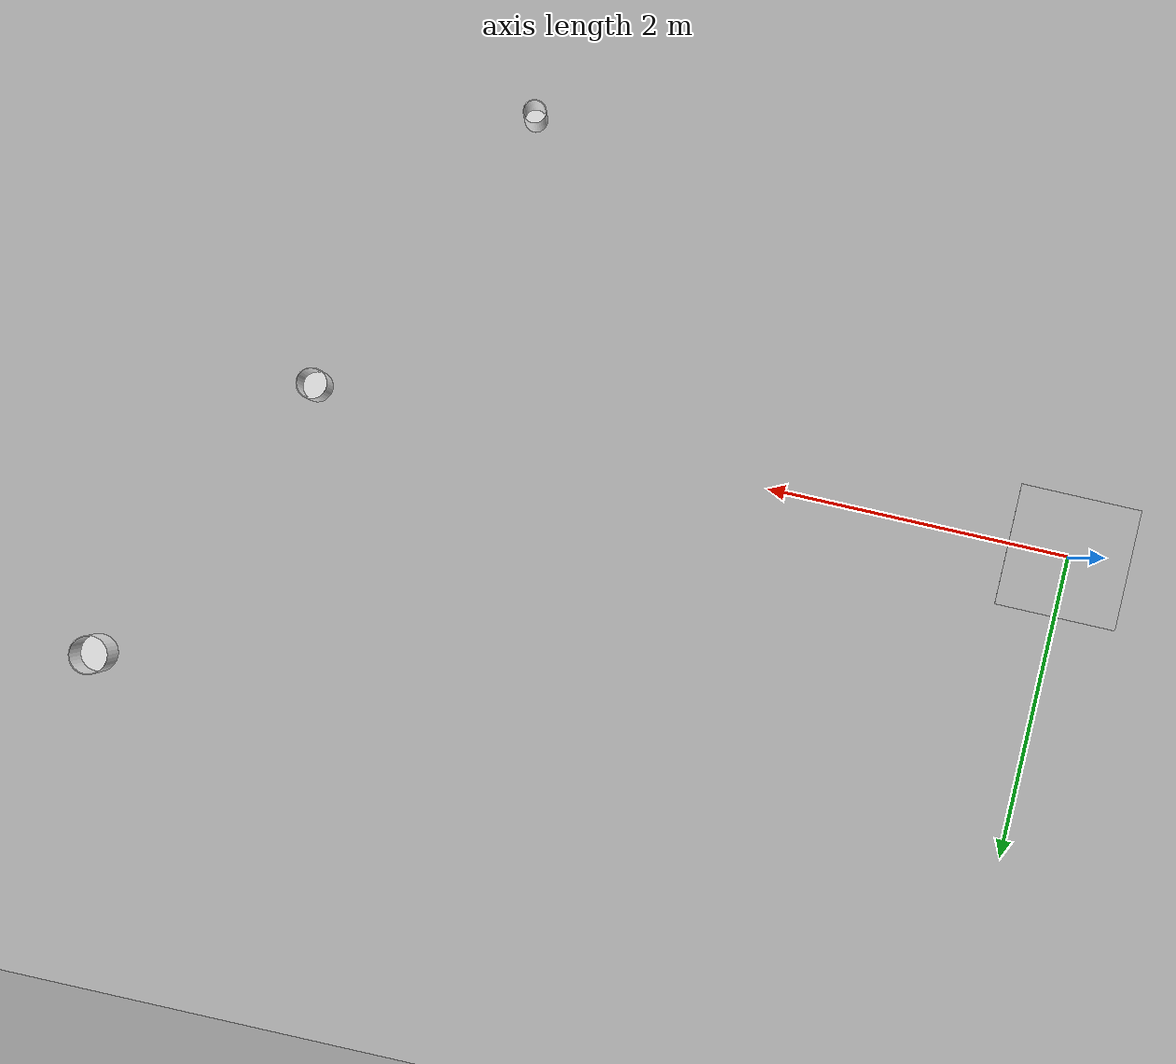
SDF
<?xml version="1.0" ?>
<sdf version="1.6">
  <world name="cuadc2024">
    <physics name='default_physics' default='0' type='ode'>
      <gravity>0 0 -9.8066</gravity>
      <ode>
        <solver>
          <type>quick</type>
          <iters>150</iters>
          <sor>1.3</sor>
          <use_dynamic_moi_rescaling>0</use_dynamic_moi_rescaling>
        </solver>
        <constraints>
          <cfm>0.00001</cfm>
          <erp>0.2</erp>
          <contact_max_correcting_vel>1000</contact_max_correcting_vel>
          <contact_surface_layer>0.01</contact_surface_layer>
        </constraints>
      </ode>
      <max_step_size>0.004</max_step_size>
      <real_time_factor>1000.0</real_time_factor>
      <real_time_update_rate>250</real_time_update_rate>
      <magnetic_field>6.0e-6 2.3e-5 -4.2e-5</magnetic_field>
    </physics>

    <!-- A global light source -->
    <include>
      <uri>model://sun</uri>
    </include>

    <model name='basketball_court'>
      <include>
        <uri>model://basketball_court</uri>
        <pose> 10 0 -0.01 0 0 0 </pose>
      </include>
    </model>

    <model name='landing_pad'>
      <include>
        <uri>model://landing_H</uri>
        <pose> 0 0 0.01 0 0 0 </pose>
      </include>
    </model>

    <model name="round_bucket_small">
      <include>
        <uri>model://round_bucket_small</uri>
        <pose> 4 -2 0.01 0 0 0 </pose>
      </include>
    </model>

    <model name="round_bucket_mid">
      <include>
        <uri>model://round_bucket_mid</uri>
        <pose> 5 0 0.01 0 0 0 </pose>
      </include>
    </model>

    <model name="round_bucket_big">
      <include>
        <uri>model://round_bucket_big</uri>
        <pose> 6 2 0.01 0 0 0 </pose>
      </include>
    </model>
  </world>
</sdf>

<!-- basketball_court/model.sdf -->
<sdf version='1.7'>
  <model name='basketball_court'>
    <pose>0 0 0 0 0 0</pose>
    <static>true</static>
    <link name='link_1'>
      <inertial>
        <mass>1</mass>
        <inertia>
          <ixx>0.166667</ixx>
          <ixy>0</ixy>
          <ixz>0</ixz>
          <iyy>0.166667</iyy>
          <iyz>0</iyz>
          <izz>0.166667</izz>
        </inertia>
        <pose>0 0 0 0 -0 0</pose>
      </inertial>
      <collision name="collision">
        <geometry>
          <box>
            <size>30 15 0.01</size>
          </box>
        </geometry>
      </collision>
      <visual name='visual'>
        <geometry>
          <box>
            <size>30 15 0.01</size>
          </box>
        </geometry>
        <material>
          <script>
            <uri>model://basketball_court/materials/scripts</uri>
            <uri>model://basketball_court/materials/textures</uri>
            <name>Ground/basketball_court</name>
          </script>
        </material>
      </visual>
    </link>
  </model>
</sdf>

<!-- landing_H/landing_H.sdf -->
<sdf version="1.6">
  <model name="landing_H">
    <pose>0 0 0.01 0 0 0</pose>
    <static>true</static>
    <link name="link">
      <inertial>
        <mass>0.5</mass>
        <inertia>
          <ixx>0.001</ixx>
          <ixy>0</ixy>
          <ixz>0</ixz>
          <iyy>0.001</iyy>
          <iyz>0</iyz>
          <izz>0.001</izz>
        </inertia>
      </inertial>
      <visual name="visual">
        <geometry>
          <box>
            <size>0.8 0.8 0.005</size>
          </box>
        </geometry>
        <material>
          <script>
            <uri>model://landing_H/materials/scripts</uri>
            <uri>model://landing_H/materials/textures</uri>
            <name>Cube/landing_H</name>
          </script>
        </material>
      </visual>
    </link>
  </model>
</sdf>

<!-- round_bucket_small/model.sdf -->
<sdf version='1.7'>
  <model name='round_bucket_small'>
    <link name='link_0'>
      <inertial>
        <mass>1</mass>
        <inertia>
          <ixx>0.166667</ixx>
          <ixy>0</ixy>
          <ixz>0</ixz>
          <iyy>0.166667</iyy>
          <iyz>0</iyz>
          <izz>0.166667</izz>
        </inertia>
        <pose>0 0 0 0 -0 0</pose>
      </inertial>
      <pose>0 0 0 0 -0 0</pose>
      <gravity>1</gravity>
      <self_collide>0</self_collide>
      <kinematic>0</kinematic>
      <enable_wind>0</enable_wind>
      <visual name="visual">
        <pose>0 0 0 0 0 0</pose>
        <geometry>
          <mesh>
            <uri>model://round_bucket_small/meshes/untitled.stl</uri>
          </mesh>
        </geometry>
        <material>
          <script>
            <name>Gazebo/White</name>
            <uri>file://media/materials/scripts/gazebo.material</uri>
          </script>
        </material>
      </visual>
      <collision name='collision'>
        <laser_retro>0</laser_retro>
        <max_contacts>10</max_contacts>
        <pose>0 0 0 0 -0 0</pose>
        <geometry>
          <mesh>
            <uri>model://round_bucket_small/meshes/untitled.stl</uri>
            <scale>1 1 1</scale>
          </mesh>
        </geometry>
        <surface>
          <friction>
            <ode>
              <mu>1</mu>
              <mu2>1</mu2>
              <fdir1>0 0 0</fdir1>
              <slip1>0</slip1>
              <slip2>0</slip2>
            </ode>
            <torsional>
              <coefficient>1</coefficient>
              <patch_radius>0</patch_radius>
              <surface_radius>0</surface_radius>
              <use_patch_radius>1</use_patch_radius>
              <ode>
                <slip>0</slip>
              </ode>
            </torsional>
          </friction>
          <bounce>
            <restitution_coefficient>0</restitution_coefficient>
            <threshold>1e+06</threshold>
          </bounce>
          <contact>
            <collide_without_contact>0</collide_without_contact>
            <collide_without_contact_bitmask>1</collide_without_contact_bitmask>
            <collide_bitmask>1</collide_bitmask>
            <ode>
              <soft_cfm>0</soft_cfm>
              <soft_erp>0.2</soft_erp>
              <kp>1e+13</kp>
              <kd>1</kd>
              <max_vel>0.01</max_vel>
              <min_depth>0</min_depth>
            </ode>
            <bullet>
              <split_impulse>1</split_impulse>
              <split_impulse_penetration_threshold>-0.01</split_impulse_penetration_threshold>
              <soft_cfm>0</soft_cfm>
              <soft_erp>0.2</soft_erp>
              <kp>1e+13</kp>
              <kd>1</kd>
            </bullet>
          </contact>
        </surface>
      </collision>
    </link>
    <static>0</static>
    <allow_auto_disable>1</allow_auto_disable>
  </model>
</sdf>

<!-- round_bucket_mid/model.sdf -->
<sdf version='1.7'>
  <model name='round_bucket_mid'>
    <link name='link_0'>
      <inertial>
        <mass>1</mass>
        <inertia>
          <ixx>0.166667</ixx>
          <ixy>0</ixy>
          <ixz>0</ixz>
          <iyy>0.166667</iyy>
          <iyz>0</iyz>
          <izz>0.166667</izz>
        </inertia>
        <pose>0 0 0 0 -0 0</pose>
      </inertial>
      <pose>0 0 0 0 -0 0</pose>
      <gravity>1</gravity>
      <self_collide>0</self_collide>
      <kinematic>0</kinematic>
      <enable_wind>0</enable_wind>
      <visual name="visual">
        <pose>0 0 0 0 0 0</pose>
        <geometry>
          <mesh>
            <uri>model://round_bucket_mid/meshes/untitled.stl</uri>
          </mesh>
        </geometry>
        <material>
          <script>
            <name>Gazebo/White</name>
            <uri>file://media/materials/scripts/gazebo.material</uri>
          </script>
        </material>
      </visual>
      <collision name='collision'>
        <laser_retro>0</laser_retro>
        <max_contacts>10</max_contacts>
        <pose>0 0 0 0 -0 0</pose>
        <geometry>
          <mesh>
            <uri>model://round_bucket_mid/meshes/untitled.stl</uri>
            <scale>1 1 1</scale>
          </mesh>
        </geometry>
        <surface>
          <friction>
            <ode>
              <mu>1</mu>
              <mu2>1</mu2>
              <fdir1>0 0 0</fdir1>
              <slip1>0</slip1>
              <slip2>0</slip2>
            </ode>
            <torsional>
              <coefficient>1</coefficient>
              <patch_radius>0</patch_radius>
              <surface_radius>0</surface_radius>
              <use_patch_radius>1</use_patch_radius>
              <ode>
                <slip>0</slip>
              </ode>
            </torsional>
          </friction>
          <bounce>
            <restitution_coefficient>0</restitution_coefficient>
            <threshold>1e+06</threshold>
          </bounce>
          <contact>
            <collide_without_contact>0</collide_without_contact>
            <collide_without_contact_bitmask>1</collide_without_contact_bitmask>
            <collide_bitmask>1</collide_bitmask>
            <ode>
              <soft_cfm>0</soft_cfm>
              <soft_erp>0.2</soft_erp>
              <kp>1e+13</kp>
              <kd>1</kd>
              <max_vel>0.01</max_vel>
              <min_depth>0</min_depth>
            </ode>
            <bullet>
              <split_impulse>1</split_impulse>
              <split_impulse_penetration_threshold>-0.01</split_impulse_penetration_threshold>
              <soft_cfm>0</soft_cfm>
              <soft_erp>0.2</soft_erp>
              <kp>1e+13</kp>
              <kd>1</kd>
            </bullet>
          </contact>
        </surface>
      </collision>
    </link>
    <static>0</static>
    <allow_auto_disable>1</allow_auto_disable>
  </model>
</sdf>

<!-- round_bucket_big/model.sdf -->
<sdf version='1.7'>
  <model name='round_bucket_big'>
    <link name='link_0'>
      <inertial>
        <mass>1</mass>
        <inertia>
          <ixx>0.166667</ixx>
          <ixy>0</ixy>
          <ixz>0</ixz>
          <iyy>0.166667</iyy>
          <iyz>0</iyz>
          <izz>0.166667</izz>
        </inertia>
        <pose>0 0 0 0 -0 0</pose>
      </inertial>
      <pose>0 0 0 0 -0 0</pose>
      <gravity>1</gravity>
      <self_collide>0</self_collide>
      <kinematic>0</kinematic>
      <enable_wind>0</enable_wind>
      <visual name="visual">
        <pose>0 0 0 0 0 0</pose>
        <geometry>
          <mesh>
            <uri>model://round_bucket_big/meshes/untitled.stl</uri>
          </mesh>
        </geometry>
        <material>
          <script>
            <name>Gazebo/White</name>
            <uri>file://media/materials/scripts/gazebo.material</uri>
          </script>
        </material>
      </visual>
      <collision name='collision'>
        <laser_retro>0</laser_retro>
        <max_contacts>10</max_contacts>
        <pose>0 0 0 0 -0 0</pose>
        <geometry>
          <mesh>
            <uri>model://round_bucket_big/meshes/untitled.stl</uri>
            <scale>1 1 1</scale>
          </mesh>
        </geometry>
        <surface>
          <friction>
            <ode>
              <mu>1</mu>
              <mu2>1</mu2>
              <fdir1>0 0 0</fdir1>
              <slip1>0</slip1>
              <slip2>0</slip2>
            </ode>
            <torsional>
              <coefficient>1</coefficient>
              <patch_radius>0</patch_radius>
              <surface_radius>0</surface_radius>
              <use_patch_radius>1</use_patch_radius>
              <ode>
                <slip>0</slip>
              </ode>
            </torsional>
          </friction>
          <bounce>
            <restitution_coefficient>0</restitution_coefficient>
            <threshold>1e+06</threshold>
          </bounce>
          <contact>
            <collide_without_contact>0</collide_without_contact>
            <collide_without_contact_bitmask>1</collide_without_contact_bitmask>
            <collide_bitmask>1</collide_bitmask>
            <ode>
              <soft_cfm>0</soft_cfm>
              <soft_erp>0.2</soft_erp>
              <kp>1e+13</kp>
              <kd>1</kd>
              <max_vel>0.01</max_vel>
              <min_depth>0</min_depth>
            </ode>
            <bullet>
              <split_impulse>1</split_impulse>
              <split_impulse_penetration_threshold>-0.01</split_impulse_penetration_threshold>
              <soft_cfm>0</soft_cfm>
              <soft_erp>0.2</soft_erp>
              <kp>1e+13</kp>
              <kd>1</kd>
            </bullet>
          </contact>
        </surface>
      </collision>
    </link>
    <static>0</static>
    <allow_auto_disable>1</allow_auto_disable>
  </model>
</sdf>
